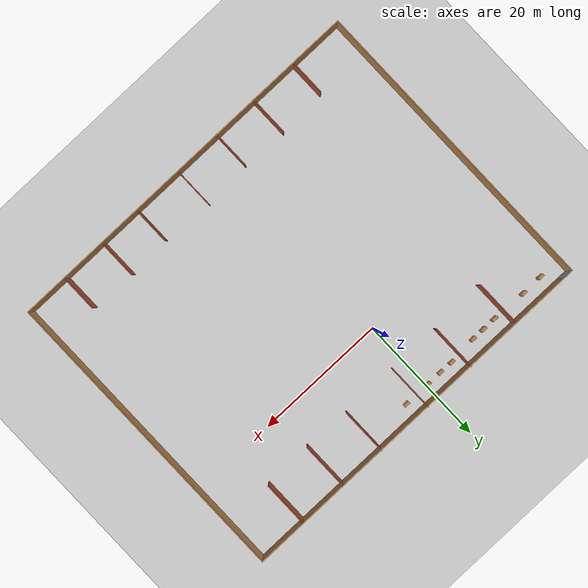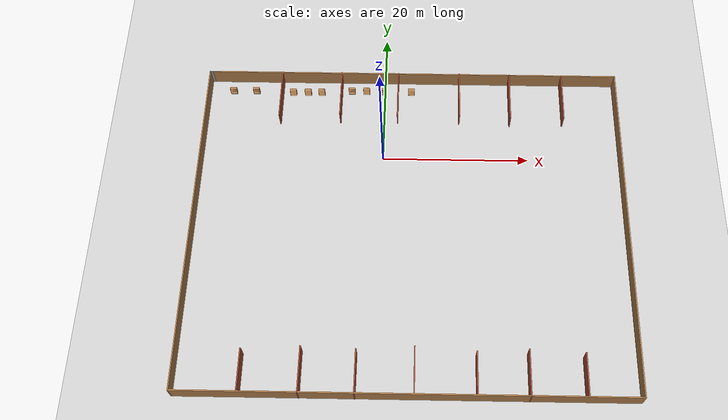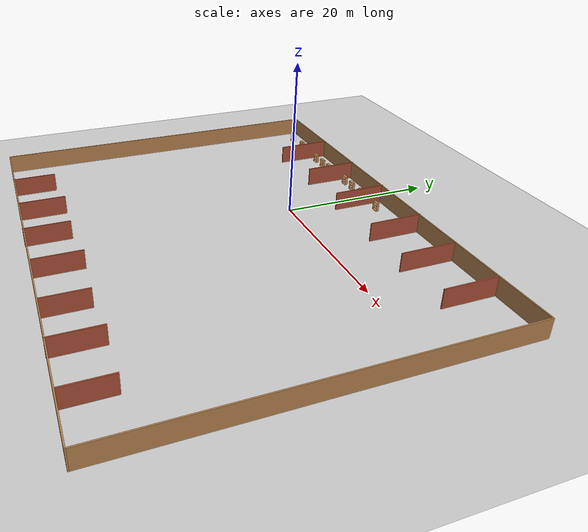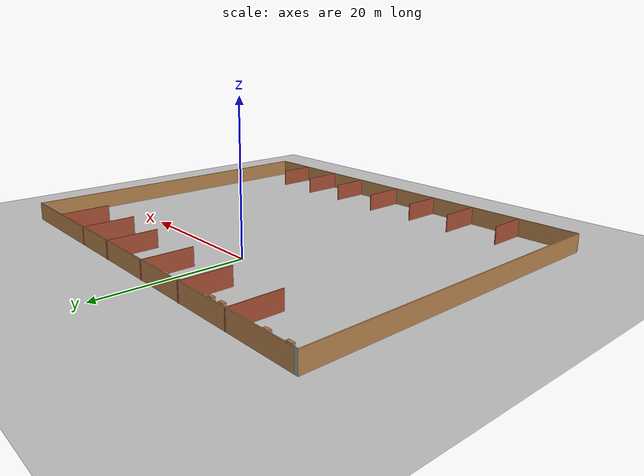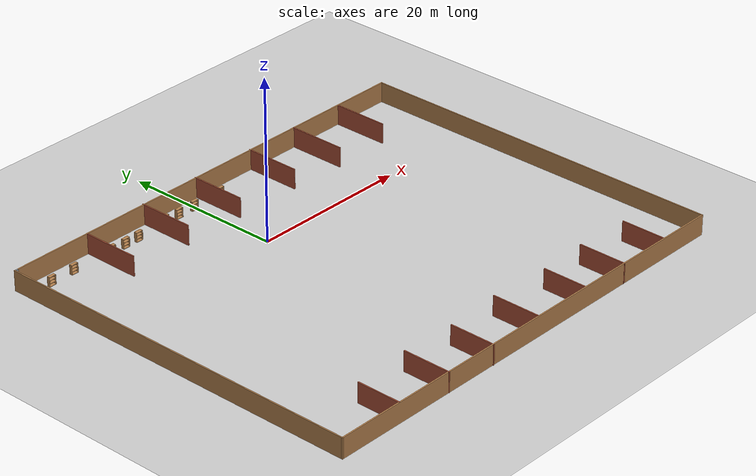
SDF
<sdf version="1.7">
 <world name="default">
  <model name="ground_plane">
   <static>1</static>
   <link name="link">
    <collision name="collision">
     <geometry><plane><normal>0 0 1</normal><size>100 100</size></plane></geometry>
     <surface><friction><ode><mu>100</mu><mu2>50</mu2></ode></friction></surface>
    </collision>
    <visual name="visual">
     <cast_shadows>0</cast_shadows>
     <geometry><plane><normal>0 0 1</normal><size>100 100</size></plane></geometry>
     <material>
      <script><uri>file://media/materials/scripts/gazebo.material</uri><name>Gazebo/Grey</name></script>
     </material>
    </visual>
   </link>
  </model>
  <model name="smart_factory">
   <pose>3.77458 -10.6449 0 0 -0 0</pose>
   <link name="Wall_0">
    <collision name="Wall_0_Collision">
     <geometry><box><size>57.5 0.15 2.5</size></box></geometry>
     <pose>0 0 1.25 0 -0 0</pose>
    </collision>
    <visual name="Wall_0_Visual">
     <pose>0 0 1.25 0 -0 0</pose>
     <geometry><box><size>57.5 0.15 2.5</size></box></geometry>
     <material>
      <script><uri>file://media/materials/scripts/gazebo.material</uri><name>Gazebo/Wood</name></script>
      <ambient>1 1 1 1</ambient>
     </material>
     <meta><layer>0</layer></meta>
    </visual>
    <pose>0.249999 23.2857 0 0 -0 0</pose>
   </link>
   <link name="Wall_1">
    <collision name="Wall_1_Collision">
     <geometry><box><size>46.75 0.15 2.5</size></box></geometry>
     <pose>0 0 1.25 0 -0 0</pose>
    </collision>
    <visual name="Wall_1_Visual">
     <pose>0 0 1.25 0 -0 0</pose>
     <geometry><box><size>46.75 0.15 2.5</size></box></geometry>
     <material>
      <script><uri>file://media/materials/scripts/gazebo.material</uri><name>Gazebo/Wood</name></script>
      <ambient>1 1 1 1</ambient>
     </material>
     <meta><layer>0</layer></meta>
    </visual>
    <pose>28.925 -0.014326 0 0 -0 -1.5708</pose>
   </link>
   <link name="Wall_17">
    <collision name="Wall_17_Collision">
     <geometry><box><size>7.25 0.15 2.5</size></box></geometry>
     <pose>0 0 1.25 0 -0 0</pose>
    </collision>
    <visual name="Wall_17_Visual">
     <pose>0 0 1.25 0 -0 0</pose>
     <geometry><box><size>7.25 0.15 2.5</size></box></geometry>
     <material>
      <script><uri>file://media/materials/scripts/gazebo.material</uri><name>Gazebo/Bricks</name></script>
      <ambient>1 1 1 1</ambient>
     </material>
     <meta><layer>0</layer></meta>
    </visual>
    <pose>-18.5075 19.7719 0 0 -0 1.5708</pose>
   </link>
   <link name="Wall_19">
    <collision name="Wall_19_Collision">
     <geometry><box><size>7 0.15 2.5</size></box></geometry>
     <pose>0 0 1.25 0 -0 0</pose>
    </collision>
    <visual name="Wall_19_Visual">
     <pose>0 0 1.25 0 -0 0</pose>
     <geometry><box><size>7 0.15 2.5</size></box></geometry>
     <material>
      <script><uri>file://media/materials/scripts/gazebo.material</uri><name>Gazebo/Bricks</name></script>
      <ambient>1 1 1 1</ambient>
     </material>
     <meta><layer>0</layer></meta>
    </visual>
    <pose>-10.0182 19.9528 0 0 -0 1.5708</pose>
   </link>
   <link name="Wall_2">
    <collision name="Wall_2_Collision">
     <geometry><box><size>58 0.15 2.5</size></box></geometry>
     <pose>0 0 1.25 0 -0 0</pose>
    </collision>
    <visual name="Wall_2_Visual">
     <pose>0 0 1.25 0 -0 0</pose>
     <geometry><box><size>58 0.15 2.5</size></box></geometry>
     <material>
      <script><uri>file://media/materials/scripts/gazebo.material</uri><name>Gazebo/Wood</name></script>
      <ambient>1 1 1 1</ambient>
     </material>
     <meta><layer>0</layer></meta>
    </visual>
    <pose>-1e-06 -23.3143 0 0 -0 3.14159</pose>
   </link>
   <link name="Wall_21">
    <collision name="Wall_21_Collision">
     <geometry><box><size>7 0.15 2.5</size></box></geometry>
     <pose>0 0 1.25 0 -0 0</pose>
    </collision>
    <visual name="Wall_21_Visual">
     <pose>0 0 1.25 0 -0 0</pose>
     <geometry><box><size>7 0.15 2.5</size></box></geometry>
     <material>
      <script><uri>file://media/materials/scripts/gazebo.material</uri><name>Gazebo/Bricks</name></script>
      <ambient>1 1 1 1</ambient>
     </material>
     <meta><layer>0</layer></meta>
    </visual>
    <pose>-1.95591 19.9528 0 0 -0 1.5708</pose>
   </link>
   <link name="Wall_23">
    <collision name="Wall_23_Collision">
     <geometry><box><size>7 0.15 2.5</size></box></geometry>
     <pose>0 0 1.25 0 -0 0</pose>
    </collision>
    <visual name="Wall_23_Visual">
     <pose>0 0 1.25 0 -0 0</pose>
     <geometry><box><size>7 0.15 2.5</size></box></geometry>
     <material>
      <script><uri>file://media/materials/scripts/gazebo.material</uri><name>Gazebo/Bricks</name></script>
      <ambient>1 1 1 1</ambient>
     </material>
     <meta><layer>0</layer></meta>
    </visual>
    <pose>6.74682 19.9528 0 0 -0 1.5708</pose>
   </link>
   <link name="Wall_25">
    <collision name="Wall_25_Collision">
     <geometry><box><size>7.25 0.15 2.5</size></box></geometry>
     <pose>0 0 1.25 0 -0 0</pose>
    </collision>
    <visual name="Wall_25_Visual">
     <pose>0 0 1.25 0 -0 0</pose>
     <geometry><box><size>7.25 0.15 2.5</size></box></geometry>
     <material>
      <script><uri>file://media/materials/scripts/gazebo.material</uri><name>Gazebo/Bricks</name></script>
      <ambient>1 1 1 1</ambient>
     </material>
     <meta><layer>0</layer></meta>
    </visual>
    <pose>13.8698 19.7505 0 0 -0 1.5708</pose>
   </link>
   <link name="Wall_27">
    <collision name="Wall_27_Collision">
     <geometry><box><size>7 0.15 2.5</size></box></geometry>
     <pose>0 0 1.25 0 -0 0</pose>
    </collision>
    <visual name="Wall_27_Visual">
     <pose>0 0 1.25 0 -0 0</pose>
     <geometry><box><size>7 0.15 2.5</size></box></geometry>
     <material>
      <script><uri>file://media/materials/scripts/gazebo.material</uri><name>Gazebo/Bricks</name></script>
      <ambient>1 1 1 1</ambient>
     </material>
     <meta><layer>0</layer></meta>
    </visual>
    <pose>21.313 19.8105 0 0 -0 1.5708</pose>
   </link>
   <link name="Wall_29">
    <collision name="Wall_29_Collision">
     <geometry><box><size>5.5 0.15 2.5</size></box></geometry>
     <pose>0 0 1.25 0 -0 0</pose>
    </collision>
    <visual name="Wall_29_Visual">
     <pose>0 0 1.25 0 -0 0</pose>
     <geometry><box><size>5.5 0.15 2.5</size></box></geometry>
     <material>
      <script><uri>file://media/materials/scripts/gazebo.material</uri><name>Gazebo/Bricks</name></script>
      <ambient>1 1 1 1</ambient>
     </material>
     <meta><layer>0</layer></meta>
    </visual>
    <pose>-20.6422 -20.5952 0 0 -0 -1.5708</pose>
   </link>
   <link name="Wall_3">
    <collision name="Wall_3_Collision">
     <geometry><box><size>46.75 0.15 2.5</size></box></geometry>
     <pose>0 0 1.25 0 -0 0</pose>
    </collision>
    <visual name="Wall_3_Visual">
     <pose>0 0 1.25 0 -0 0</pose>
     <geometry><box><size>46.75 0.15 2.5</size></box></geometry>
     <material>
      <script><uri>file://media/materials/scripts/gazebo.material</uri><name>Gazebo/Wood</name></script>
      <ambient>1 1 1 1</ambient>
     </material>
     <meta><layer>0</layer></meta>
    </visual>
    <pose>-28.925 -0.014326 0 0 -0 1.5708</pose>
   </link>
   <link name="Wall_31">
    <collision name="Wall_31_Collision">
     <geometry><box><size>6 0.15 2.5</size></box></geometry>
     <pose>0 0 1.25 0 -0 0</pose>
    </collision>
    <visual name="Wall_31_Visual">
     <pose>0 0 1.25 0 -0 0</pose>
     <geometry><box><size>6 0.15 2.5</size></box></geometry>
     <material>
      <script><uri>file://media/materials/scripts/gazebo.material</uri><name>Gazebo/Bricks</name></script>
      <ambient>1 1 1 1</ambient>
     </material>
     <meta><layer>0</layer></meta>
    </visual>
    <pose>-13.2417 -20.4182 0 0 -0 -1.5708</pose>
   </link>
   <link name="Wall_33">
    <collision name="Wall_33_Collision">
     <geometry><box><size>5.75 0.15 2.5</size></box></geometry>
     <pose>0 0 1.25 0 -0 0</pose>
    </collision>
    <visual name="Wall_33_Visual">
     <pose>0 0 1.25 0 -0 0</pose>
     <geometry><box><size>5.75 0.15 2.5</size></box></geometry>
     <material>
      <script><uri>file://media/materials/scripts/gazebo.material</uri><name>Gazebo/Bricks</name></script>
      <ambient>1 1 1 1</ambient>
     </material>
     <meta><layer>0</layer></meta>
    </visual>
    <pose>-6.34641 -20.5778 0 0 -0 -1.5708</pose>
   </link>
   <link name="Wall_35">
    <collision name="Wall_35_Collision">
     <geometry><box><size>6 0.15 2.5</size></box></geometry>
     <pose>0 0 1.25 0 -0 0</pose>
    </collision>
    <visual name="Wall_35_Visual">
     <pose>0 0 1.25 0 -0 0</pose>
     <geometry><box><size>6 0.15 2.5</size></box></geometry>
     <material>
      <script><uri>file://media/materials/scripts/gazebo.material</uri><name>Gazebo/Bricks</name></script>
      <ambient>1 1 1 1</ambient>
     </material>
     <meta><layer>0</layer></meta>
    </visual>
    <pose>0.947372 -20.2545 0 0 -0 -1.5708</pose>
   </link>
   <link name="Wall_37">
    <collision name="Wall_37_Collision">
     <geometry><box><size>5.5 0.15 2.5</size></box></geometry>
     <pose>0 0 1.25 0 -0 0</pose>
    </collision>
    <visual name="Wall_37_Visual">
     <pose>0 0 1.25 0 -0 0</pose>
     <geometry><box><size>5.5 0.15 2.5</size></box></geometry>
     <material>
      <script><uri>file://media/materials/scripts/gazebo.material</uri><name>Gazebo/Bricks</name></script>
      <ambient>1 1 1 1</ambient>
     </material>
     <meta><layer>0</layer></meta>
    </visual>
    <pose>8.67522 -20.4955 0 0 -0 -1.5708</pose>
   </link>
   <link name="Wall_39">
    <collision name="Wall_39_Collision">
     <geometry><box><size>6 0.15 2.5</size></box></geometry>
     <pose>0 0 1.25 0 -0 0</pose>
    </collision>
    <visual name="Wall_39_Visual">
     <pose>0 0 1.25 0 -0 0</pose>
     <geometry><box><size>6 0.15 2.5</size></box></geometry>
     <material>
      <script><uri>file://media/materials/scripts/gazebo.material</uri><name>Gazebo/Bricks</name></script>
      <ambient>1 1 1 1</ambient>
     </material>
     <meta><layer>0</layer></meta>
    </visual>
    <pose>15.1578 -20.4182 0 0 -0 -1.5708</pose>
   </link>
   <link name="Wall_4">
    <collision name="Wall_4_Collision">
     <geometry><box><size>1.75 0.15 2.5</size></box></geometry>
     <pose>0 0 1.25 0 -0 0</pose>
    </collision>
    <visual name="Wall_4_Visual">
     <pose>0 0 1.25 0 -0 0</pose>
     <geometry><box><size>1.75 0.15 2.5</size></box></geometry>
     <material>
      <script><uri>file://media/materials/scripts/gazebo.material</uri><name>Gazebo/Grey</name></script>
      <ambient>1 1 1 1</ambient>
     </material>
     <meta><layer>0</layer></meta>
    </visual>
    <pose>-28.125 23.2857 0 0 -0 0</pose>
   </link>
   <link name="Wall_41">
    <collision name="Wall_41_Collision">
     <geometry><box><size>5.5 0.15 2.5</size></box></geometry>
     <pose>0 0 1.25 0 -0 0</pose>
    </collision>
    <visual name="Wall_41_Visual">
     <pose>0 0 1.25 0 -0 0</pose>
     <geometry><box><size>5.5 0.15 2.5</size></box></geometry>
     <material>
      <script><uri>file://media/materials/scripts/gazebo.material</uri><name>Gazebo/Bricks</name></script>
      <ambient>1 1 1 1</ambient>
     </material>
     <meta><layer>0</layer></meta>
    </visual>
    <pose>22.1527 -20.4742 0 0 -0 -1.5708</pose>
   </link>
   <static>1</static>
  </model>
  <model name="bookshelf">
   <static>1</static>
   <link name="link">
    <inertial><mass>1</mass></inertial>
    <collision name="back">
     <pose>0 0.005 0.6 0 -0 0</pose>
     <geometry><box><size>0.9 0.01 1.2</size></box></geometry>
    </collision>
    <visual name="visual1">
     <pose>0 0.005 0.6 0 -0 0</pose>
     <geometry><box><size>0.9 0.01 1.2</size></box></geometry>
     <material>
      <script><uri>file://media/materials/scripts/gazebo.material</uri><name>Gazebo/Wood</name></script>
     </material>
    </visual>
    <collision name="left_side">
     <pose>0.45 -0.195 0.6 0 -0 0</pose>
     <geometry><box><size>0.02 0.4 1.2</size></box></geometry>
    </collision>
    <visual name="visual2">
     <pose>0.45 -0.195 0.6 0 -0 0</pose>
     <geometry><box><size>0.02 0.4 1.2</size></box></geometry>
     <material>
      <script><uri>file://media/materials/scripts/gazebo.material</uri><name>Gazebo/Wood</name></script>
     </material>
    </visual>
    <collision name="right_side">
     <pose>-0.45 -0.195 0.6 0 -0 0</pose>
     <geometry><box><size>0.02 0.4 1.2</size></box></geometry>
    </collision>
    <visual name="visual3">
     <pose>-0.45 -0.195 0.6 0 -0 0</pose>
     <geometry><box><size>0.02 0.4 1.2</size></box></geometry>
     <material>
      <script><uri>file://media/materials/scripts/gazebo.material</uri><name>Gazebo/Wood</name></script>
     </material>
    </visual>
    <collision name="bottom">
     <pose>0 -0.195 0.03 0 -0 0</pose>
     <geometry><box><size>0.88 0.4 0.06</size></box></geometry>
    </collision>
    <visual name="visual4">
     <pose>0 -0.195 0.03 0 -0 0</pose>
     <geometry><box><size>0.88 0.4 0.06</size></box></geometry>
     <material>
      <script><uri>file://media/materials/scripts/gazebo.material</uri><name>Gazebo/Wood</name></script>
     </material>
    </visual>
    <collision name="top">
     <pose>0 -0.195 1.19 0 -0 0</pose>
     <geometry><box><size>0.88 0.4 0.02</size></box></geometry>
    </collision>
    <visual name="visual5">
     <pose>0 -0.195 1.19 0 -0 0</pose>
     <geometry><box><size>0.88 0.4 0.02</size></box></geometry>
     <material>
      <script><uri>file://media/materials/scripts/gazebo.material</uri><name>Gazebo/Wood</name></script>
     </material>
    </visual>
    <collision name="low_shelf">
     <pose>0 -0.195 0.43 0 -0 0</pose>
     <geometry><box><size>0.88 0.4 0.02</size></box></geometry>
    </collision>
    <visual name="visual6">
     <pose>0 -0.195 0.43 0 -0 0</pose>
     <geometry><box><size>0.88 0.4 0.02</size></box></geometry>
     <material>
      <script><uri>file://media/materials/scripts/gazebo.material</uri><name>Gazebo/Wood</name></script>
     </material>
    </visual>
    <collision name="high_shelf">
     <pose>0 -0.195 0.8 0 -0 0</pose>
     <geometry><box><size>0.88 0.4 0.02</size></box></geometry>
    </collision>
    <visual name="visual7">
     <pose>0 -0.195 0.8 0 -0 0</pose>
     <geometry><box><size>0.88 0.4 0.02</size></box></geometry>
     <material>
      <script><uri>file://media/materials/scripts/gazebo.material</uri><name>Gazebo/Wood</name></script>
     </material>
    </visual>
   </link>
   <pose>-21.8442 10.8712 0 0 -0 0</pose>
  </model>
  <model name="bookshelf_0">
   <static>1</static>
   <link name="link">
    <inertial><mass>1</mass></inertial>
    <collision name="back">
     <pose>0 0.005 0.6 0 -0 0</pose>
     <geometry><box><size>0.9 0.01 1.2</size></box></geometry>
    </collision>
    <visual name="visual1">
     <pose>0 0.005 0.6 0 -0 0</pose>
     <geometry><box><size>0.9 0.01 1.2</size></box></geometry>
     <material>
      <script><uri>file://media/materials/scripts/gazebo.material</uri><name>Gazebo/Wood</name></script>
     </material>
    </visual>
    <collision name="left_side">
     <pose>0.45 -0.195 0.6 0 -0 0</pose>
     <geometry><box><size>0.02 0.4 1.2</size></box></geometry>
    </collision>
    <visual name="visual2">
     <pose>0.45 -0.195 0.6 0 -0 0</pose>
     <geometry><box><size>0.02 0.4 1.2</size></box></geometry>
     <material>
      <script><uri>file://media/materials/scripts/gazebo.material</uri><name>Gazebo/Wood</name></script>
     </material>
    </visual>
    <collision name="right_side">
     <pose>-0.45 -0.195 0.6 0 -0 0</pose>
     <geometry><box><size>0.02 0.4 1.2</size></box></geometry>
    </collision>
    <visual name="visual3">
     <pose>-0.45 -0.195 0.6 0 -0 0</pose>
     <geometry><box><size>0.02 0.4 1.2</size></box></geometry>
     <material>
      <script><uri>file://media/materials/scripts/gazebo.material</uri><name>Gazebo/Wood</name></script>
     </material>
    </visual>
    <collision name="bottom">
     <pose>0 -0.195 0.03 0 -0 0</pose>
     <geometry><box><size>0.88 0.4 0.06</size></box></geometry>
    </collision>
    <visual name="visual4">
     <pose>0 -0.195 0.03 0 -0 0</pose>
     <geometry><box><size>0.88 0.4 0.06</size></box></geometry>
     <material>
      <script><uri>file://media/materials/scripts/gazebo.material</uri><name>Gazebo/Wood</name></script>
     </material>
    </visual>
    <collision name="top">
     <pose>0 -0.195 1.19 0 -0 0</pose>
     <geometry><box><size>0.88 0.4 0.02</size></box></geometry>
    </collision>
    <visual name="visual5">
     <pose>0 -0.195 1.19 0 -0 0</pose>
     <geometry><box><size>0.88 0.4 0.02</size></box></geometry>
     <material>
      <script><uri>file://media/materials/scripts/gazebo.material</uri><name>Gazebo/Wood</name></script>
     </material>
    </visual>
    <collision name="low_shelf">
     <pose>0 -0.195 0.43 0 -0 0</pose>
     <geometry><box><size>0.88 0.4 0.02</size></box></geometry>
    </collision>
    <visual name="visual6">
     <pose>0 -0.195 0.43 0 -0 0</pose>
     <geometry><box><size>0.88 0.4 0.02</size></box></geometry>
     <material>
      <script><uri>file://media/materials/scripts/gazebo.material</uri><name>Gazebo/Wood</name></script>
     </material>
    </visual>
    <collision name="high_shelf">
     <pose>0 -0.195 0.8 0 -0 0</pose>
     <geometry><box><size>0.88 0.4 0.02</size></box></geometry>
    </collision>
    <visual name="visual7">
     <pose>0 -0.195 0.8 0 -0 0</pose>
     <geometry><box><size>0.88 0.4 0.02</size></box></geometry>
     <material>
      <script><uri>file://media/materials/scripts/gazebo.material</uri><name>Gazebo/Wood</name></script>
     </material>
    </visual>
   </link>
   <pose>-18.588 10.9215 0 0 -0 0</pose>
  </model>
  <model name="bookshelf_1">
   <static>1</static>
   <link name="link">
    <inertial><mass>1</mass></inertial>
    <collision name="back">
     <pose>0 0.005 0.6 0 -0 0</pose>
     <geometry><box><size>0.9 0.01 1.2</size></box></geometry>
    </collision>
    <visual name="visual1">
     <pose>0 0.005 0.6 0 -0 0</pose>
     <geometry><box><size>0.9 0.01 1.2</size></box></geometry>
     <material>
      <script><uri>file://media/materials/scripts/gazebo.material</uri><name>Gazebo/Wood</name></script>
     </material>
    </visual>
    <collision name="left_side">
     <pose>0.45 -0.195 0.6 0 -0 0</pose>
     <geometry><box><size>0.02 0.4 1.2</size></box></geometry>
    </collision>
    <visual name="visual2">
     <pose>0.45 -0.195 0.6 0 -0 0</pose>
     <geometry><box><size>0.02 0.4 1.2</size></box></geometry>
     <material>
      <script><uri>file://media/materials/scripts/gazebo.material</uri><name>Gazebo/Wood</name></script>
     </material>
    </visual>
    <collision name="right_side">
     <pose>-0.45 -0.195 0.6 0 -0 0</pose>
     <geometry><box><size>0.02 0.4 1.2</size></box></geometry>
    </collision>
    <visual name="visual3">
     <pose>-0.45 -0.195 0.6 0 -0 0</pose>
     <geometry><box><size>0.02 0.4 1.2</size></box></geometry>
     <material>
      <script><uri>file://media/materials/scripts/gazebo.material</uri><name>Gazebo/Wood</name></script>
     </material>
    </visual>
    <collision name="bottom">
     <pose>0 -0.195 0.03 0 -0 0</pose>
     <geometry><box><size>0.88 0.4 0.06</size></box></geometry>
    </collision>
    <visual name="visual4">
     <pose>0 -0.195 0.03 0 -0 0</pose>
     <geometry><box><size>0.88 0.4 0.06</size></box></geometry>
     <material>
      <script><uri>file://media/materials/scripts/gazebo.material</uri><name>Gazebo/Wood</name></script>
     </material>
    </visual>
    <collision name="top">
     <pose>0 -0.195 1.19 0 -0 0</pose>
     <geometry><box><size>0.88 0.4 0.02</size></box></geometry>
    </collision>
    <visual name="visual5">
     <pose>0 -0.195 1.19 0 -0 0</pose>
     <geometry><box><size>0.88 0.4 0.02</size></box></geometry>
     <material>
      <script><uri>file://media/materials/scripts/gazebo.material</uri><name>Gazebo/Wood</name></script>
     </material>
    </visual>
    <collision name="low_shelf">
     <pose>0 -0.195 0.43 0 -0 0</pose>
     <geometry><box><size>0.88 0.4 0.02</size></box></geometry>
    </collision>
    <visual name="visual6">
     <pose>0 -0.195 0.43 0 -0 0</pose>
     <geometry><box><size>0.88 0.4 0.02</size></box></geometry>
     <material>
      <script><uri>file://media/materials/scripts/gazebo.material</uri><name>Gazebo/Wood</name></script>
     </material>
    </visual>
    <collision name="high_shelf">
     <pose>0 -0.195 0.8 0 -0 0</pose>
     <geometry><box><size>0.88 0.4 0.02</size></box></geometry>
    </collision>
    <visual name="visual7">
     <pose>0 -0.195 0.8 0 -0 0</pose>
     <geometry><box><size>0.88 0.4 0.02</size></box></geometry>
     <material>
      <script><uri>file://media/materials/scripts/gazebo.material</uri><name>Gazebo/Wood</name></script>
     </material>
    </visual>
   </link>
   <pose>-13.2401 10.718 0 0 -0 0</pose>
  </model>
  <model name="bookshelf_2">
   <static>1</static>
   <link name="link">
    <inertial><mass>1</mass></inertial>
    <collision name="back">
     <pose>0 0.005 0.6 0 -0 0</pose>
     <geometry><box><size>0.9 0.01 1.2</size></box></geometry>
    </collision>
    <visual name="visual1">
     <pose>0 0.005 0.6 0 -0 0</pose>
     <geometry><box><size>0.9 0.01 1.2</size></box></geometry>
     <material>
      <script><uri>file://media/materials/scripts/gazebo.material</uri><name>Gazebo/Wood</name></script>
     </material>
    </visual>
    <collision name="left_side">
     <pose>0.45 -0.195 0.6 0 -0 0</pose>
     <geometry><box><size>0.02 0.4 1.2</size></box></geometry>
    </collision>
    <visual name="visual2">
     <pose>0.45 -0.195 0.6 0 -0 0</pose>
     <geometry><box><size>0.02 0.4 1.2</size></box></geometry>
     <material>
      <script><uri>file://media/materials/scripts/gazebo.material</uri><name>Gazebo/Wood</name></script>
     </material>
    </visual>
    <collision name="right_side">
     <pose>-0.45 -0.195 0.6 0 -0 0</pose>
     <geometry><box><size>0.02 0.4 1.2</size></box></geometry>
    </collision>
    <visual name="visual3">
     <pose>-0.45 -0.195 0.6 0 -0 0</pose>
     <geometry><box><size>0.02 0.4 1.2</size></box></geometry>
     <material>
      <script><uri>file://media/materials/scripts/gazebo.material</uri><name>Gazebo/Wood</name></script>
     </material>
    </visual>
    <collision name="bottom">
     <pose>0 -0.195 0.03 0 -0 0</pose>
     <geometry><box><size>0.88 0.4 0.06</size></box></geometry>
    </collision>
    <visual name="visual4">
     <pose>0 -0.195 0.03 0 -0 0</pose>
     <geometry><box><size>0.88 0.4 0.06</size></box></geometry>
     <material>
      <script><uri>file://media/materials/scripts/gazebo.material</uri><name>Gazebo/Wood</name></script>
     </material>
    </visual>
    <collision name="top">
     <pose>0 -0.195 1.19 0 -0 0</pose>
     <geometry><box><size>0.88 0.4 0.02</size></box></geometry>
    </collision>
    <visual name="visual5">
     <pose>0 -0.195 1.19 0 -0 0</pose>
     <geometry><box><size>0.88 0.4 0.02</size></box></geometry>
     <material>
      <script><uri>file://media/materials/scripts/gazebo.material</uri><name>Gazebo/Wood</name></script>
     </material>
    </visual>
    <collision name="low_shelf">
     <pose>0 -0.195 0.43 0 -0 0</pose>
     <geometry><box><size>0.88 0.4 0.02</size></box></geometry>
    </collision>
    <visual name="visual6">
     <pose>0 -0.195 0.43 0 -0 0</pose>
     <geometry><box><size>0.88 0.4 0.02</size></box></geometry>
     <material>
      <script><uri>file://media/materials/scripts/gazebo.material</uri><name>Gazebo/Wood</name></script>
     </material>
    </visual>
    <collision name="high_shelf">
     <pose>0 -0.195 0.8 0 -0 0</pose>
     <geometry><box><size>0.88 0.4 0.02</size></box></geometry>
    </collision>
    <visual name="visual7">
     <pose>0 -0.195 0.8 0 -0 0</pose>
     <geometry><box><size>0.88 0.4 0.02</size></box></geometry>
     <material>
      <script><uri>file://media/materials/scripts/gazebo.material</uri><name>Gazebo/Wood</name></script>
     </material>
    </visual>
   </link>
   <pose>-9.16775 10.7529 0 0 -0 0</pose>
  </model>
  <model name="bookshelf_3">
   <static>1</static>
   <link name="link">
    <inertial><mass>1</mass></inertial>
    <collision name="back">
     <pose>0 0.005 0.6 0 -0 0</pose>
     <geometry><box><size>0.9 0.01 1.2</size></box></geometry>
    </collision>
    <visual name="visual1">
     <pose>0 0.005 0.6 0 -0 0</pose>
     <geometry><box><size>0.9 0.01 1.2</size></box></geometry>
     <material>
      <script><uri>file://media/materials/scripts/gazebo.material</uri><name>Gazebo/Wood</name></script>
     </material>
    </visual>
    <collision name="left_side">
     <pose>0.45 -0.195 0.6 0 -0 0</pose>
     <geometry><box><size>0.02 0.4 1.2</size></box></geometry>
    </collision>
    <visual name="visual2">
     <pose>0.45 -0.195 0.6 0 -0 0</pose>
     <geometry><box><size>0.02 0.4 1.2</size></box></geometry>
     <material>
      <script><uri>file://media/materials/scripts/gazebo.material</uri><name>Gazebo/Wood</name></script>
     </material>
    </visual>
    <collision name="right_side">
     <pose>-0.45 -0.195 0.6 0 -0 0</pose>
     <geometry><box><size>0.02 0.4 1.2</size></box></geometry>
    </collision>
    <visual name="visual3">
     <pose>-0.45 -0.195 0.6 0 -0 0</pose>
     <geometry><box><size>0.02 0.4 1.2</size></box></geometry>
     <material>
      <script><uri>file://media/materials/scripts/gazebo.material</uri><name>Gazebo/Wood</name></script>
     </material>
    </visual>
    <collision name="bottom">
     <pose>0 -0.195 0.03 0 -0 0</pose>
     <geometry><box><size>0.88 0.4 0.06</size></box></geometry>
    </collision>
    <visual name="visual4">
     <pose>0 -0.195 0.03 0 -0 0</pose>
     <geometry><box><size>0.88 0.4 0.06</size></box></geometry>
     <material>
      <script><uri>file://media/materials/scripts/gazebo.material</uri><name>Gazebo/Wood</name></script>
     </material>
    </visual>
    <collision name="top">
     <pose>0 -0.195 1.19 0 -0 0</pose>
     <geometry><box><size>0.88 0.4 0.02</size></box></geometry>
    </collision>
    <visual name="visual5">
     <pose>0 -0.195 1.19 0 -0 0</pose>
     <geometry><box><size>0.88 0.4 0.02</size></box></geometry>
     <material>
      <script><uri>file://media/materials/scripts/gazebo.material</uri><name>Gazebo/Wood</name></script>
     </material>
    </visual>
    <collision name="low_shelf">
     <pose>0 -0.195 0.43 0 -0 0</pose>
     <geometry><box><size>0.88 0.4 0.02</size></box></geometry>
    </collision>
    <visual name="visual6">
     <pose>0 -0.195 0.43 0 -0 0</pose>
     <geometry><box><size>0.88 0.4 0.02</size></box></geometry>
     <material>
      <script><uri>file://media/materials/scripts/gazebo.material</uri><name>Gazebo/Wood</name></script>
     </material>
    </visual>
    <collision name="high_shelf">
     <pose>0 -0.195 0.8 0 -0 0</pose>
     <geometry><box><size>0.88 0.4 0.02</size></box></geometry>
    </collision>
    <visual name="visual7">
     <pose>0 -0.195 0.8 0 -0 0</pose>
     <geometry><box><size>0.88 0.4 0.02</size></box></geometry>
     <material>
      <script><uri>file://media/materials/scripts/gazebo.material</uri><name>Gazebo/Wood</name></script>
     </material>
    </visual>
   </link>
   <pose>-4.82056 11.062 0 0 -0 0</pose>
  </model>
  <model name="bookshelf_4">
   <static>1</static>
   <link name="link">
    <inertial><mass>1</mass></inertial>
    <collision name="back">
     <pose>0 0.005 0.6 0 -0 0</pose>
     <geometry><box><size>0.9 0.01 1.2</size></box></geometry>
    </collision>
    <visual name="visual1">
     <pose>0 0.005 0.6 0 -0 0</pose>
     <geometry><box><size>0.9 0.01 1.2</size></box></geometry>
     <material>
      <script><uri>file://media/materials/scripts/gazebo.material</uri><name>Gazebo/Wood</name></script>
     </material>
    </visual>
    <collision name="left_side">
     <pose>0.45 -0.195 0.6 0 -0 0</pose>
     <geometry><box><size>0.02 0.4 1.2</size></box></geometry>
    </collision>
    <visual name="visual2">
     <pose>0.45 -0.195 0.6 0 -0 0</pose>
     <geometry><box><size>0.02 0.4 1.2</size></box></geometry>
     <material>
      <script><uri>file://media/materials/scripts/gazebo.material</uri><name>Gazebo/Wood</name></script>
     </material>
    </visual>
    <collision name="right_side">
     <pose>-0.45 -0.195 0.6 0 -0 0</pose>
     <geometry><box><size>0.02 0.4 1.2</size></box></geometry>
    </collision>
    <visual name="visual3">
     <pose>-0.45 -0.195 0.6 0 -0 0</pose>
     <geometry><box><size>0.02 0.4 1.2</size></box></geometry>
     <material>
      <script><uri>file://media/materials/scripts/gazebo.material</uri><name>Gazebo/Wood</name></script>
     </material>
    </visual>
    <collision name="bottom">
     <pose>0 -0.195 0.03 0 -0 0</pose>
     <geometry><box><size>0.88 0.4 0.06</size></box></geometry>
    </collision>
    <visual name="visual4">
     <pose>0 -0.195 0.03 0 -0 0</pose>
     <geometry><box><size>0.88 0.4 0.06</size></box></geometry>
     <material>
      <script><uri>file://media/materials/scripts/gazebo.material</uri><name>Gazebo/Wood</name></script>
     </material>
    </visual>
    <collision name="top">
     <pose>0 -0.195 1.19 0 -0 0</pose>
     <geometry><box><size>0.88 0.4 0.02</size></box></geometry>
    </collision>
    <visual name="visual5">
     <pose>0 -0.195 1.19 0 -0 0</pose>
     <geometry><box><size>0.88 0.4 0.02</size></box></geometry>
     <material>
      <script><uri>file://media/materials/scripts/gazebo.material</uri><name>Gazebo/Wood</name></script>
     </material>
    </visual>
    <collision name="low_shelf">
     <pose>0 -0.195 0.43 0 -0 0</pose>
     <geometry><box><size>0.88 0.4 0.02</size></box></geometry>
    </collision>
    <visual name="visual6">
     <pose>0 -0.195 0.43 0 -0 0</pose>
     <geometry><box><size>0.88 0.4 0.02</size></box></geometry>
     <material>
      <script><uri>file://media/materials/scripts/gazebo.material</uri><name>Gazebo/Wood</name></script>
     </material>
    </visual>
    <collision name="high_shelf">
     <pose>0 -0.195 0.8 0 -0 0</pose>
     <geometry><box><size>0.88 0.4 0.02</size></box></geometry>
    </collision>
    <visual name="visual7">
     <pose>0 -0.195 0.8 0 -0 0</pose>
     <geometry><box><size>0.88 0.4 0.02</size></box></geometry>
     <material>
      <script><uri>file://media/materials/scripts/gazebo.material</uri><name>Gazebo/Wood</name></script>
     </material>
    </visual>
   </link>
   <pose>-0.324653 11.0459 0 0 -0 0</pose>
  </model>
  <model name="bookshelf_5">
   <static>1</static>
   <link name="link">
    <inertial><mass>1</mass></inertial>
    <collision name="back">
     <pose>0 0.005 0.6 0 -0 0</pose>
     <geometry><box><size>0.9 0.01 1.2</size></box></geometry>
    </collision>
    <visual name="visual1">
     <pose>0 0.005 0.6 0 -0 0</pose>
     <geometry><box><size>0.9 0.01 1.2</size></box></geometry>
     <material>
      <script><uri>file://media/materials/scripts/gazebo.material</uri><name>Gazebo/Wood</name></script>
     </material>
    </visual>
    <collision name="left_side">
     <pose>0.45 -0.195 0.6 0 -0 0</pose>
     <geometry><box><size>0.02 0.4 1.2</size></box></geometry>
    </collision>
    <visual name="visual2">
     <pose>0.45 -0.195 0.6 0 -0 0</pose>
     <geometry><box><size>0.02 0.4 1.2</size></box></geometry>
     <material>
      <script><uri>file://media/materials/scripts/gazebo.material</uri><name>Gazebo/Wood</name></script>
     </material>
    </visual>
    <collision name="right_side">
     <pose>-0.45 -0.195 0.6 0 -0 0</pose>
     <geometry><box><size>0.02 0.4 1.2</size></box></geometry>
    </collision>
    <visual name="visual3">
     <pose>-0.45 -0.195 0.6 0 -0 0</pose>
     <geometry><box><size>0.02 0.4 1.2</size></box></geometry>
     <material>
      <script><uri>file://media/materials/scripts/gazebo.material</uri><name>Gazebo/Wood</name></script>
     </material>
    </visual>
    <collision name="bottom">
     <pose>0 -0.195 0.03 0 -0 0</pose>
     <geometry><box><size>0.88 0.4 0.06</size></box></geometry>
    </collision>
    <visual name="visual4">
     <pose>0 -0.195 0.03 0 -0 0</pose>
     <geometry><box><size>0.88 0.4 0.06</size></box></geometry>
     <material>
      <script><uri>file://media/materials/scripts/gazebo.material</uri><name>Gazebo/Wood</name></script>
     </material>
    </visual>
    <collision name="top">
     <pose>0 -0.195 1.19 0 -0 0</pose>
     <geometry><box><size>0.88 0.4 0.02</size></box></geometry>
    </collision>
    <visual name="visual5">
     <pose>0 -0.195 1.19 0 -0 0</pose>
     <geometry><box><size>0.88 0.4 0.02</size></box></geometry>
     <material>
      <script><uri>file://media/materials/scripts/gazebo.material</uri><name>Gazebo/Wood</name></script>
     </material>
    </visual>
    <collision name="low_shelf">
     <pose>0 -0.195 0.43 0 -0 0</pose>
     <geometry><box><size>0.88 0.4 0.02</size></box></geometry>
    </collision>
    <visual name="visual6">
     <pose>0 -0.195 0.43 0 -0 0</pose>
     <geometry><box><size>0.88 0.4 0.02</size></box></geometry>
     <material>
      <script><uri>file://media/materials/scripts/gazebo.material</uri><name>Gazebo/Wood</name></script>
     </material>
    </visual>
    <collision name="high_shelf">
     <pose>0 -0.195 0.8 0 -0 0</pose>
     <geometry><box><size>0.88 0.4 0.02</size></box></geometry>
    </collision>
    <visual name="visual7">
     <pose>0 -0.195 0.8 0 -0 0</pose>
     <geometry><box><size>0.88 0.4 0.02</size></box></geometry>
     <material>
      <script><uri>file://media/materials/scripts/gazebo.material</uri><name>Gazebo/Wood</name></script>
     </material>
    </visual>
   </link>
   <pose>3.70248 10.9976 0 0 -0 0</pose>
  </model>
  <model name="bookshelf_13">
   <static>1</static>
   <link name="link">
    <inertial><mass>1</mass></inertial>
    <collision name="back">
     <pose>0 0.005 0.6 0 -0 0</pose>
     <geometry><box><size>0.9 0.01 1.2</size></box></geometry>
    </collision>
    <visual name="visual1">
     <pose>0 0.005 0.6 0 -0 0</pose>
     <geometry><box><size>0.9 0.01 1.2</size></box></geometry>
     <material>
      <script><uri>file://media/materials/scripts/gazebo.material</uri><name>Gazebo/Wood</name></script>
     </material>
    </visual>
    <collision name="left_side">
     <pose>0.45 -0.195 0.6 0 -0 0</pose>
     <geometry><box><size>0.02 0.4 1.2</size></box></geometry>
    </collision>
    <visual name="visual2">
     <pose>0.45 -0.195 0.6 0 -0 0</pose>
     <geometry><box><size>0.02 0.4 1.2</size></box></geometry>
     <material>
      <script><uri>file://media/materials/scripts/gazebo.material</uri><name>Gazebo/Wood</name></script>
     </material>
    </visual>
    <collision name="right_side">
     <pose>-0.45 -0.195 0.6 0 -0 0</pose>
     <geometry><box><size>0.02 0.4 1.2</size></box></geometry>
    </collision>
    <visual name="visual3">
     <pose>-0.45 -0.195 0.6 0 -0 0</pose>
     <geometry><box><size>0.02 0.4 1.2</size></box></geometry>
     <material>
      <script><uri>file://media/materials/scripts/gazebo.material</uri><name>Gazebo/Wood</name></script>
     </material>
    </visual>
    <collision name="bottom">
     <pose>0 -0.195 0.03 0 -0 0</pose>
     <geometry><box><size>0.88 0.4 0.06</size></box></geometry>
    </collision>
    <visual name="visual4">
     <pose>0 -0.195 0.03 0 -0 0</pose>
     <geometry><box><size>0.88 0.4 0.06</size></box></geometry>
     <material>
      <script><uri>file://media/materials/scripts/gazebo.material</uri><name>Gazebo/Wood</name></script>
     </material>
    </visual>
    <collision name="top">
     <pose>0 -0.195 1.19 0 -0 0</pose>
     <geometry><box><size>0.88 0.4 0.02</size></box></geometry>
    </collision>
    <visual name="visual5">
     <pose>0 -0.195 1.19 0 -0 0</pose>
     <geometry><box><size>0.88 0.4 0.02</size></box></geometry>
     <material>
      <script><uri>file://media/materials/scripts/gazebo.material</uri><name>Gazebo/Wood</name></script>
     </material>
    </visual>
    <collision name="low_shelf">
     <pose>0 -0.195 0.43 0 -0 0</pose>
     <geometry><box><size>0.88 0.4 0.02</size></box></geometry>
    </collision>
    <visual name="visual6">
     <pose>0 -0.195 0.43 0 -0 0</pose>
     <geometry><box><size>0.88 0.4 0.02</size></box></geometry>
     <material>
      <script><uri>file://media/materials/scripts/gazebo.material</uri><name>Gazebo/Wood</name></script>
     </material>
    </visual>
    <collision name="high_shelf">
     <pose>0 -0.195 0.8 0 -0 0</pose>
     <geometry><box><size>0.88 0.4 0.02</size></box></geometry>
    </collision>
    <visual name="visual7">
     <pose>0 -0.195 0.8 0 -0 0</pose>
     <geometry><box><size>0.88 0.4 0.02</size></box></geometry>
     <material>
      <script><uri>file://media/materials/scripts/gazebo.material</uri><name>Gazebo/Wood</name></script>
     </material>
    </visual>
   </link>
   <pose>-11.125 10.7479 0 0 -0 0</pose>
  </model>
  <model name="bookshelf_14">
   <static>1</static>
   <link name="link">
    <inertial><mass>1</mass></inertial>
    <collision name="back">
     <pose>0 0.005 0.6 0 -0 0</pose>
     <geometry><box><size>0.9 0.01 1.2</size></box></geometry>
    </collision>
    <visual name="visual1">
     <pose>0 0.005 0.6 0 -0 0</pose>
     <geometry><box><size>0.9 0.01 1.2</size></box></geometry>
     <material>
      <script><uri>file://media/materials/scripts/gazebo.material</uri><name>Gazebo/Wood</name></script>
     </material>
    </visual>
    <collision name="left_side">
     <pose>0.45 -0.195 0.6 0 -0 0</pose>
     <geometry><box><size>0.02 0.4 1.2</size></box></geometry>
    </collision>
    <visual name="visual2">
     <pose>0.45 -0.195 0.6 0 -0 0</pose>
     <geometry><box><size>0.02 0.4 1.2</size></box></geometry>
     <material>
      <script><uri>file://media/materials/scripts/gazebo.material</uri><name>Gazebo/Wood</name></script>
     </material>
    </visual>
    <collision name="right_side">
     <pose>-0.45 -0.195 0.6 0 -0 0</pose>
     <geometry><box><size>0.02 0.4 1.2</size></box></geometry>
    </collision>
    <visual name="visual3">
     <pose>-0.45 -0.195 0.6 0 -0 0</pose>
     <geometry><box><size>0.02 0.4 1.2</size></box></geometry>
     <material>
      <script><uri>file://media/materials/scripts/gazebo.material</uri><name>Gazebo/Wood</name></script>
     </material>
    </visual>
    <collision name="bottom">
     <pose>0 -0.195 0.03 0 -0 0</pose>
     <geometry><box><size>0.88 0.4 0.06</size></box></geometry>
    </collision>
    <visual name="visual4">
     <pose>0 -0.195 0.03 0 -0 0</pose>
     <geometry><box><size>0.88 0.4 0.06</size></box></geometry>
     <material>
      <script><uri>file://media/materials/scripts/gazebo.material</uri><name>Gazebo/Wood</name></script>
     </material>
    </visual>
    <collision name="top">
     <pose>0 -0.195 1.19 0 -0 0</pose>
     <geometry><box><size>0.88 0.4 0.02</size></box></geometry>
    </collision>
    <visual name="visual5">
     <pose>0 -0.195 1.19 0 -0 0</pose>
     <geometry><box><size>0.88 0.4 0.02</size></box></geometry>
     <material>
      <script><uri>file://media/materials/scripts/gazebo.material</uri><name>Gazebo/Wood</name></script>
     </material>
    </visual>
    <collision name="low_shelf">
     <pose>0 -0.195 0.43 0 -0 0</pose>
     <geometry><box><size>0.88 0.4 0.02</size></box></geometry>
    </collision>
    <visual name="visual6">
     <pose>0 -0.195 0.43 0 -0 0</pose>
     <geometry><box><size>0.88 0.4 0.02</size></box></geometry>
     <material>
      <script><uri>file://media/materials/scripts/gazebo.material</uri><name>Gazebo/Wood</name></script>
     </material>
    </visual>
    <collision name="high_shelf">
     <pose>0 -0.195 0.8 0 -0 0</pose>
     <geometry><box><size>0.88 0.4 0.02</size></box></geometry>
    </collision>
    <visual name="visual7">
     <pose>0 -0.195 0.8 0 -0 0</pose>
     <geometry><box><size>0.88 0.4 0.02</size></box></geometry>
     <material>
      <script><uri>file://media/materials/scripts/gazebo.material</uri><name>Gazebo/Wood</name></script>
     </material>
    </visual>
   </link>
   <pose>-2.7266 11.0287 0 0 -0 0</pose>
  </model>
 </world>
</sdf>
